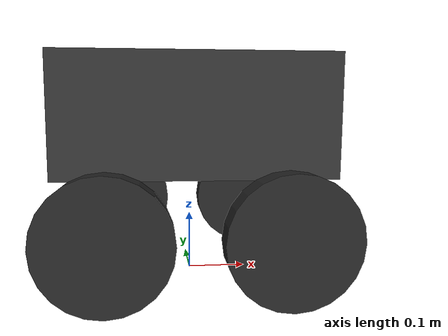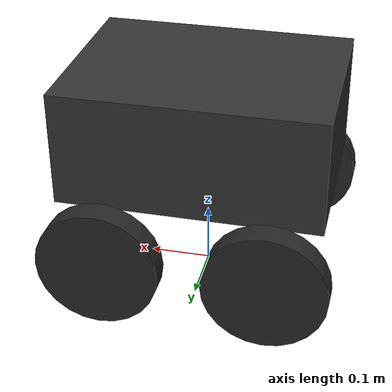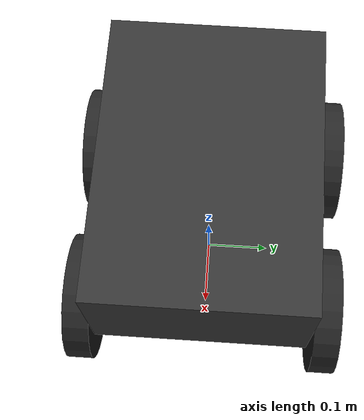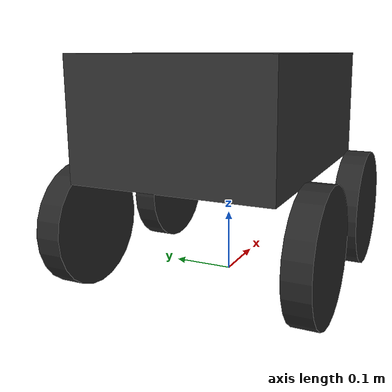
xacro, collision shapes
<?xml version="1.0"?>

<robot xmlns:xacro="http://www.ros.org/wiki/xacro"
       name="ares_jackal">

  <!-- Jackal geometry                                           -->

  <xacro:property name="PI" value="3.1415926535897931"/>

  <xacro:property name="wheelbase" value="0.262"/>
  <xacro:property name="track" value="0.37559"/>

  <xacro:property name="wheel_vertical_offset" value="-0.082"/>
  <xacro:property name="footprint_vertical_offset" value="-0.0655"/>

  <xacro:property name="wheel_radius" value="0.098"/>
  <xacro:property name="wheel_width" value="0.040"/>

  <xacro:property name="chassis_length" value="0.420"/>
  <xacro:property name="chassis_width" value="0.310"/>
  <xacro:property name="chassis_height" value="0.184"/>

  <!-- Materials                                                 -->

  <material name="dark_grey">
    <color rgba="0.2 0.2 0.2 1.0"/>
  </material>

  <material name="black">
    <color rgba="0.15 0.15 0.15 1.0"/>
  </material>

  <!-- Base footprint                                            -->

  <link name="base_footprint"/>

  <joint name="base_footprint_joint" type="fixed">
    <parent link="base_footprint"/>
    <child link="base_link"/>
    <origin xyz="0 0 0.18" rpy="0 0 0"/>
  </joint>

  <!-- Base link                                                 -->

  <link name="base_link"/>

  <joint name="base_link_joint" type="fixed">
    <parent link="base_link"/>
    <child link="chassis_link"/>
    <origin xyz="0 0 0" rpy="0 0 0"/>
  </joint>

  <!-- Chassis                                                   -->

  <link name="chassis_link">

    <visual>
      <origin
        xyz="0 0 ${footprint_vertical_offset}"
        rpy="${PI/2} 0 ${PI/2}"/>

      <geometry>
        <mesh
          filename="package://ares_jackal_description/meshes/jackal-base.stl"/>
      </geometry>

      <material name="dark_grey"/>
    </visual>

    <collision>
      <origin xyz="0 0 ${chassis_height/2}" rpy="0 0 0"/>

      <geometry>
        <box
          size="${chassis_length}
                ${chassis_width}
                ${chassis_height}"/>
      </geometry>
    </collision>

    <inertial>
      <origin xyz="0.012 0.002 0.067" rpy="0 0 0"/>

      <mass value="16.523"/>

      <inertia
        ixx="0.3136"
        ixy="-0.0008"
        ixz="0.0164"
        iyy="0.3922"
        iyz="-0.0009"
        izz="0.4485"/>
    </inertial>

  </link>

  <!-- Wheel macro                                               -->

  <xacro:macro name="jackal_wheel"
               params="prefix x y">

    <link name="${prefix}_wheel_link">

      <visual>
        <origin xyz="0 0 0" rpy="${PI/2} 0 0"/>

        <geometry>
          <mesh
            filename="package://ares_jackal_description/meshes/jackal-wheel.stl"/>
        </geometry>

        <material name="black"/>
      </visual>

      <collision>
        <origin xyz="0 0 0" rpy="${PI/2} 0 0"/>

        <geometry>
          <cylinder
            radius="${wheel_radius}"
            length="${wheel_width}"/>
        </geometry>
      </collision>

      <inertial>
        <origin xyz="0 0 0" rpy="0 0 0"/>

        <mass value="0.477"/>

        <inertia
          ixx="0.0013"
          ixy="0"
          ixz="0"
          iyy="0.0024"
          iyz="0"
          izz="0.0013"/>
      </inertial>

    </link>

    <joint name="${prefix}_wheel_joint"
       type="fixed">

      <parent link="chassis_link"/>
      <child link="${prefix}_wheel_link"/>

      <origin
        xyz="${x} ${y} ${wheel_vertical_offset}"
        rpy="0 0 0"/>

    </joint>

  </xacro:macro>

  <!-- Wheels                                                    -->

  <xacro:jackal_wheel
    prefix="front_left"
    x="${wheelbase/2}"
    y="${track/2}"/>

  <xacro:jackal_wheel
    prefix="front_right"
    x="${wheelbase/2}"
    y="${-track/2}"/>

  <xacro:jackal_wheel
    prefix="rear_left"
    x="${-wheelbase/2}"
    y="${track/2}"/>

  <xacro:jackal_wheel
    prefix="rear_right"
    x="${-wheelbase/2}"
    y="${-track/2}"/>

  <!-- Sensor frames                                             -->

  <link name="imu_link"/>

  <joint name="imu_joint" type="fixed">
    <parent link="chassis_link"/>
    <child link="imu_link"/>
    <origin xyz="0 0 0.10" rpy="0 0 0"/>
  </joint>

  <link name="lidar_link"/>

  <joint name="lidar_joint" type="fixed">
    <parent link="chassis_link"/>
    <child link="lidar_link"/>
    <origin xyz="0.10 0 0.22" rpy="0 0 0"/>
  </joint>

  <link name="camera_link"/>

  <joint name="camera_joint" type="fixed">
    <parent link="chassis_link"/>
    <child link="camera_link"/>
    <origin xyz="0.20 0 0.12" rpy="0 0 0"/>
  </joint>

  <link name="gps_link"/>

  <joint name="gps_joint" type="fixed">
    <parent link="chassis_link"/>
    <child link="gps_link"/>
    <origin xyz="-0.18 0.126 0.1815" rpy="0 0 0"/>
  </joint>

</robot>
